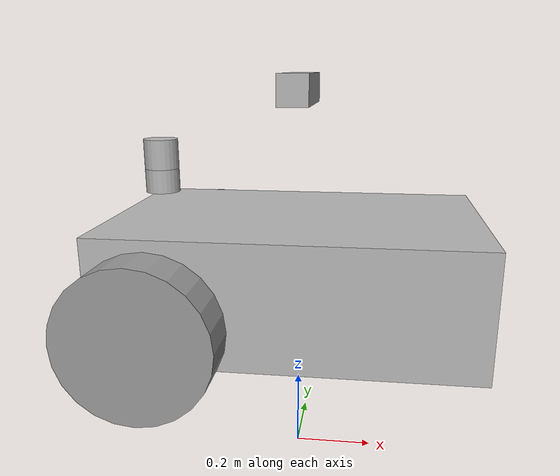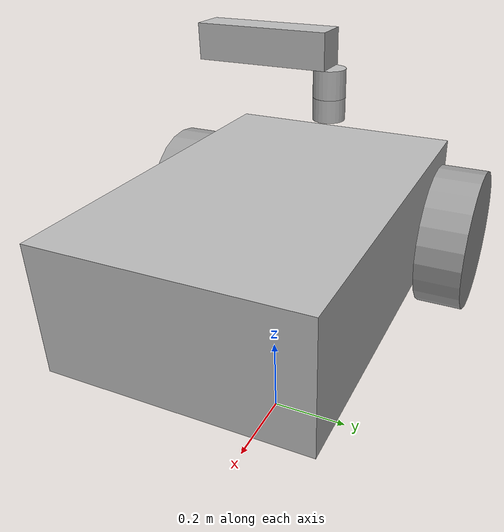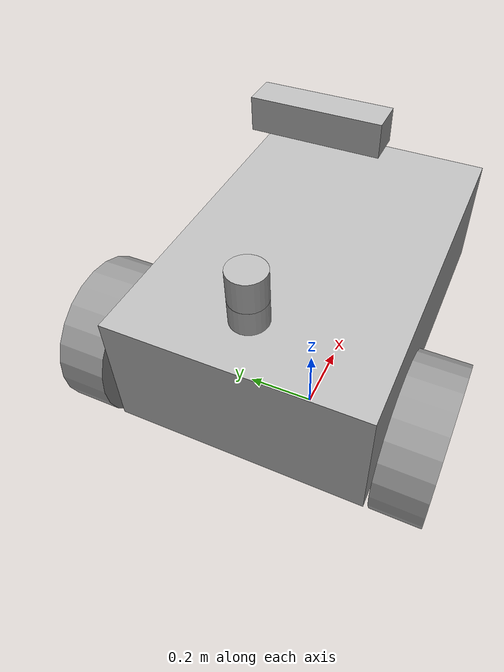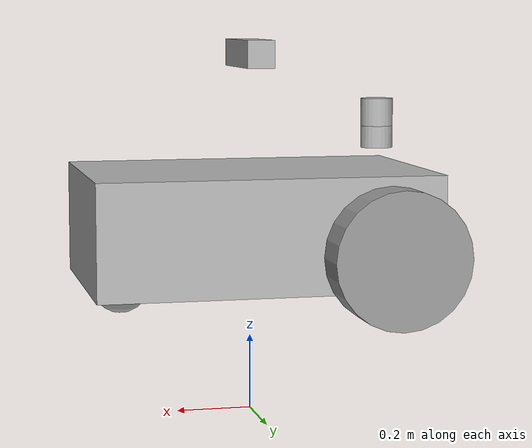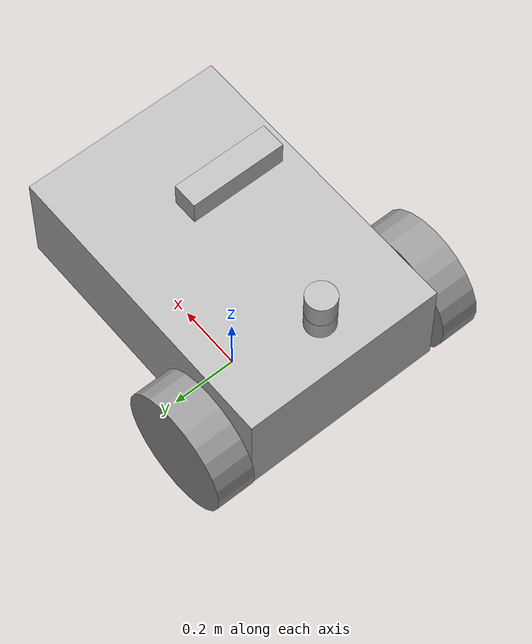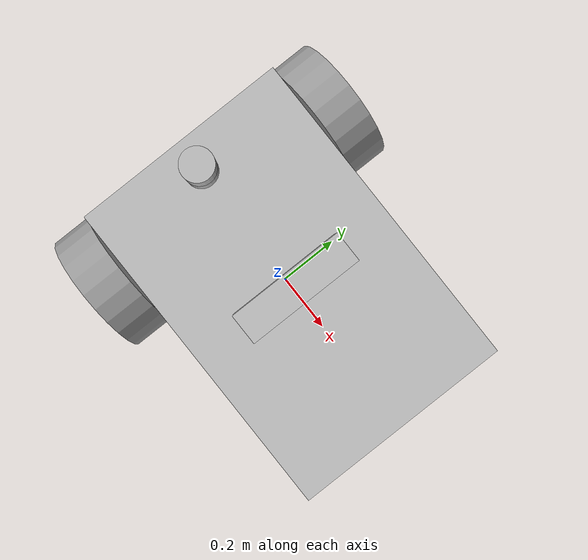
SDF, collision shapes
<?xml version='1.0'?>
<sdf version="1.5">
<model name="real_bowser">
  <pose>0 0 0.5 0 0 0</pose>
  <static>false</static>
    <link name="base_link">
      <inertial>
        <mass>124</mass>
        <inertia> <!-- inertias are tricky to compute -->
          <!-- http://gazebosim.org/tutorials?tut=inertia&cat=build_robot -->
          <ixx>0.083</ixx>       <!-- for a box: ixx = 0.083 * mass * (y*y + z*z) -->
          <ixy>0.0</ixy>         <!-- for a box: ixy = 0 -->
          <ixz>0.0</ixz>         <!-- for a box: ixz = 0 -->
          <iyy>0.083</iyy>       <!-- for a box: iyy = 0.083 * mass * (x*x + z*z) -->
          <iyz>0.0</iyz>         <!-- for a box: iyz = 0 -->
          <izz>0.083</izz>       <!-- for a box: izz = 0.083 * mass * (x*x + y*y) -->
        </inertia>
      </inertial>
      <collision name="collision">
        <geometry>
          <box>
            <size>.9 .6 .3</size>
          </box>
        </geometry>
      </collision>
      <visual name="visual">
        <geometry>
          <box>
            <size>.9 .6 .3</size>
          </box>
        </geometry>
      </visual>

      <collision name='caster_collision'>
            <pose>.35 0 -0.15 0 0 0</pose>
            <geometry>
                <sphere>
                <radius>.075</radius>
              </sphere>
            </geometry>

            <surface>
              <friction>
                <ode>
                  <mu>0</mu>
                  <mu2>0</mu2>
                  <slip1>1.0</slip1>
                  <slip2>1.0</slip2>
                </ode>
              </friction>
            </surface>
          </collision>

          <visual name='caster_visual'>
            <pose>.35 0 -.15 0 0 0</pose>
            <geometry>
              <sphere>
                <radius>.075</radius>
              </sphere>
            </geometry>
          </visual>

    </link>

    <link name="front_left_wheel">
      <pose>-0.3 -.37 -0.05 0 0 0</pose>
      <inertial>
        <mass>2.6357</mass>
        <pose>0 0 0 0 0 0</pose>
        <inertia>
          <ixx>0.0246688</ixx>
          <ixy>0</ixy>
          <ixz>0</ixz>
          <iyy>0.0246688</iyy>
          <iyz>0</iyz>
          <izz>0.0441058</izz>
        </inertia>
      </inertial>
      <collision name="front_left_wheel_collision">
        <pose>0 0 0 -1.5707 0 0</pose>
        <geometry>
          <cylinder>
            <radius>0.17775</radius>
            <length>0.1143</length>
          </cylinder>
        </geometry>
        <surface>
          <friction>
            <ode>
              <mu>100000.0</mu>
              <mu2>100000.0</mu2>
              <slip1>0.0</slip1>
              <slip2>0.0</slip2>
            </ode>
          </friction>
        </surface>
      </collision>
      <visual name="front_left_wheel">
        <pose>0 0 0 -3.14159 0 0</pose>
        <geometry>
          <mesh>
            <uri>model://husky/meshes/wheel.stl</uri>
          </mesh>
        </geometry>
        <material>
          <script>
            <name>Gazebo/Grey</name>
          </script>
        </material>
      </visual>
    </link>
    <joint name="front_left_joint" type="revolute">
      <parent>base_link</parent>
      <child>front_left_wheel</child>
      <axis>
        <xyz>0 1 0</xyz>
        <use_parent_model_frame>true</use_parent_model_frame>
      </axis>
      <physics>
        <ode>
          <limit>
            <cfm>0.000000</cfm>
            <erp>0.900000</erp>
          </limit>
        </ode>
      </physics>
    </joint>

    <link name="front_right_wheel">
      <pose>-0.3 .37 -0.05 0 0 0</pose>
      <inertial>
        <mass>2.6357</mass>
        <pose>0 0 0 0 0 0</pose>
        <inertia>
          <ixx>0.0246688</ixx>
          <ixy>0</ixy>
          <ixz>0</ixz>
          <iyy>0.0246688</iyy>
          <iyz>0</iyz>
          <izz>0.0441058</izz>
        </inertia>
      </inertial>
      <collision name="front_right_wheel_collision">
        <pose>0 0 0 -1.5707 0 0</pose>
        <geometry>
          <cylinder>
            <radius>0.17775</radius>
            <length>0.1143</length>
          </cylinder>
        </geometry>
        <surface>
          <friction>
            <ode>
              <mu>100000.0</mu>
              <mu2>100000.0</mu2>
              <slip1>0.0</slip1>
              <slip2>0.0</slip2>
            </ode>
          </friction>
        </surface>
      </collision>
      <visual name="front_right_wheel">
        <pose>0 0 0 -3.14159 0 0</pose>
        <geometry>
          <mesh>
            <uri>model://husky/meshes/wheel.stl</uri>
          </mesh>
        </geometry>
        <material>
          <script>
            <name>Gazebo/Grey</name>
          </script>
        </material>
      </visual>
    </link>
    <joint name="front_right_joint" type="revolute">
      <parent>base_link</parent>
      <child>front_right_wheel</child>
      <axis>
        <xyz>0 1 0</xyz>
        <use_parent_model_frame>true</use_parent_model_frame>
      </axis>
      <physics>
        <ode>
          <limit>
            <cfm>0.000000</cfm>
            <erp>0.900000</erp>
          </limit>
        </ode>
      </physics>
    </joint>

    <include>
      <uri>model://bowser_hdl32</uri>
      <pose> -.35 0 .2 0 0 3.14159 </pose>
    </include>
    <joint name="hdl32_joint" type="fixed">
    	<parent>base_link</parent>
    	<child>bowser_hdl32::base</child>
    </joint>

    <plugin filename="libgazebo_ros_diff_drive.so" name="diff_drive_controller">
    	<alwaysOn>true</alwaysOn>
  		<updateRate>100</updateRate>

  		<leftJoint>front_left_joint</leftJoint>
  		<rightJoint>front_right_joint</rightJoint>
  		<wheelSeparation>0.74</wheelSeparation>
	    <wheelDiameter>0.3555</wheelDiameter>
	    <torque>20</torque>

	    <commandTopic>/bowser/diff_drive</commandTopic>
	    <odometryTopic>/bowser/odom</odometryTopic>
	    <odometryFrame>odom</odometryFrame>
	    <robotBaseFrame>base_link</robotBaseFrame>

    </plugin>

    <plugin name="imu_plugin" filename="libgazebo_ros_imu.so">
        <alwaysOn>true</alwaysOn>
        <bodyName>base_link</bodyName>
        <topicName>/bowser/imu</topicName>
        <serviceName>imu_service</serviceName>
        <gaussianNoise>0.0</gaussianNoise>
        <updateRate>10.0</updateRate>
    </plugin>

    <include>
      <uri>model://bowser_depthcam</uri>
      <pose> 0 0 .4548 0 0 3.14159</pose>
    </include>
    <joint name="depthcam_joint" type="fixed">
      <parent>base_link</parent>
      <child>bowser_depthcam::link</child>
    </joint>

    <plugin name="gps_controller" filename="libhector_gazebo_ros_gps.so">
      <alwayson>true</alwayson>
      <updaterate>1.0</updaterate>
      <bodyname>base_link</bodyname>
      <topicname>/bowser/fix</topicname>
      <velocitytopicname>/bowser/fix_velocity</velocitytopicname>
      <drift>5.0 5.0 5.0</drift>
      <gaussiannoise>0.1 0.1 0.1</gaussiannoise>
      <velocitydrift>0 0 0</velocitydrift>
      <velocitygaussiannoise>0.1 0.1 0.1</velocitygaussiannoise>
    </plugin>

  </model>
</sdf>

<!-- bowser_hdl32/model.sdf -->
<sdf version="1.5">
  <model name="bowser_hdl32">
    <gravity>false</gravity>
    <link name="hdl32_base">
      <pose>0 0 0.029335 0 0 0</pose>
      <inertial>
        <mass>1.2</mass>
        <inertia>
          <ixx>0.001087473</ixx>
          <iyy>0.001087473</iyy>
          <izz>0.001092437</izz>
          <ixy>0</ixy>
          <ixz>0</ixz>
          <iyz>0</iyz>
        </inertia>
      </inertial>
      <collision name="base_collision">
        <geometry>
          <cylinder>
            <radius>.04267</radius>
            <length>.05867</length>
          </cylinder>
        </geometry>
      </collision>
      <visual name="base_visual">
        <pose>0 0 -0.029335 0 0 0</pose>
        <geometry>
          <mesh>
            <uri>model://bowser_hdl32/meshes/velodyne_base.dae</uri>
          </mesh>
        </geometry>
      </visual>
    </link>

    <link name="hdl32_top">
      <pose>0 0 0.095455 0 0 0</pose>
      <inertial>
        <mass>0.1</mass>
        <inertia>
          <ixx>0.000090623</ixx>
          <iyy>0.000090623</iyy>
          <izz>0.000091036</izz>
          <ixy>0</ixy>
          <ixz>0</ixz>
          <iyz>0</iyz>
        </inertia>
      </inertial>
      <collision name="top_collision">
        <geometry>
          <cylinder>
            <radius>0.04267</radius>
            <length>0.07357</length>
          </cylinder>
        </geometry>
      </collision>
      <visual name="top_visual">
        <pose>0 0 -0.0376785 0 0 1.5707</pose>
        <geometry>
          <mesh>
            <uri>model://bowser_hdl32/meshes/velodyne_top.dae</uri>
          </mesh>
        </geometry>
      </visual>

      <sensor type="ray" name="sensor">
        <pose>0 0 -0.004645 0 0 0</pose>
        <visualize>false</visualize>
        <update_rate>60</update_rate>
        <ray>
          <noise>
            <type>gaussian</type>
            <mean>0.0</mean>
            <stddev>0.1</stddev>
          </noise>
          <scan>
            <vertical>
              <samples>32</samples>
              <resolution>1</resolution>
              <min_angle>-.6</min_angle>
              <max_angle>.1</max_angle>
            </vertical>
            <horizontal>
                <samples>128</samples>
                <resolution>1</resolution>
                <min_angle>-3.14159</min_angle>
                <max_angle>3.14159</max_angle>
            </horizontal>
          </scan>
          <range>
            <min>0.7</min>
            <max>10</max>
            <resolution>0.02</resolution>
          </range>
        </ray>
        <plugin name="laser" filename="libgazebo_ros_velodyne_laser.so">
            <robotNamespace></robotNamespace>
	    <topicName>/bowser/velodyne</topicName>
            <frameName>bowser2/bowser_hdl32/hdl32_top</frameName>
	</plugin>
      </sensor>
    </link>

    <joint type="revolute" name="joint">
      <pose>0 0 -0.036785 0 0 0</pose>
      <parent>hdl32_base</parent>
      <child>hdl32_top</child>
      <axis>
        <xyz>0 0 1</xyz>
        <limit>
          <lower>-10000000000000000</lower>
          <upper>10000000000000000</upper>
        </limit>
      </axis>
    </joint>
  </model>
</sdf>

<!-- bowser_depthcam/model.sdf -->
<sdf version="1.5">
  <model name="bowser_depthcam">
    <gravity>false</gravity>
    <!-- this pose tag sets orientation of the tf frame i.e. how the image appears in rviz -->
    <pose>0 0 0.036 -1.5708 0 -1.5708</pose>
    <link name="dc_link">
      <inertial>
        <mass>0.1</mass>
      </inertial>
      <collision name="collision">
        <geometry>
          <box>
            <size>0.073000 0.276000 0.072000</size>
          </box>
        </geometry>
      </collision>
      <visual name="visual">
        <geometry>
          <mesh>
            <uri>model://kinect/meshes/kinect.dae</uri>
          </mesh>
        </geometry>
      </visual>
      <sensor name="camera" type="depth">
        <update_rate>40</update_rate>
        <camera>
          <horizontal_fov>1.047198</horizontal_fov>
          <image>
            <width>640</width>
            <height>480</height>
            <format>R8G8B8</format>
          </image>
          <clip>
            <near>0.05</near>
            <far>10</far>
          </clip>
        </camera>

        <plugin name="camera_plugin" filename="libgazebo_ros_openni_kinect.so">
          <robotNamespace></robotNamespace>
          <baseline>0.0</baseline>
          <alwaysOn>true</alwaysOn>
          <updateRate>0.0</updateRate>
          <cameraName>camera_ir</cameraName>
          <imageTopicName>/depth_camera/color/image_raw</imageTopicName>
          <cameraInfoTopicName>/depth_camera/color/camera_info</cameraInfoTopicName>
          <depthImageTopicName>/depth_camera/depth/image_raw</depthImageTopicName>
          <depthImageCameraInfoTopicName>/depth_camera/depth/camera_info</depthImageCameraInfoTopicName>
          <pointCloudTopicName>/depth_camera/depth/points</pointCloudTopicName>
          <frameName>bowser_depthcam/dc_link</frameName>
          <pointCloudCutoff>0</pointCloudCutoff>
          <pointCloudCutoffMax>10.0</pointCloudCutoffMax>
          <distortionK1>0</distortionK1>
          <distortionK2>0</distortionK2>
          <distortionK3>0</distortionK3>
          <distortionT1>0</distortionT1>
          <distortionT2>0</distortionT2>
          <CxPrime>0</CxPrime>
          <Cx>0</Cx>
          <Cy>0</Cy>
          <focalLength>0</focalLength>
          <hackBaseline>0</hackBaseline>
        </plugin>
      </sensor>
    </link>
  </model>
</sdf>
